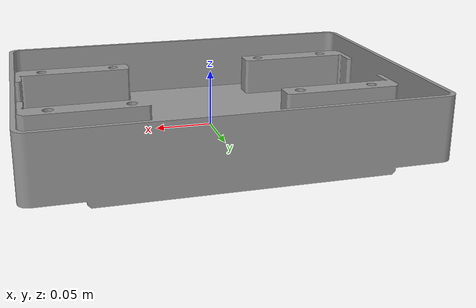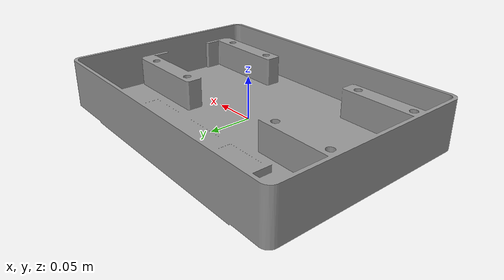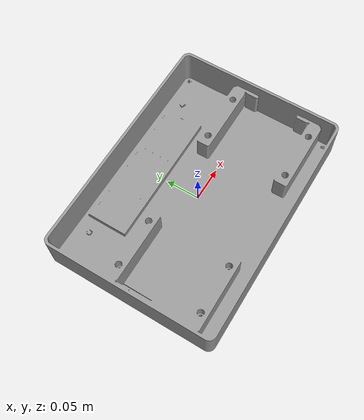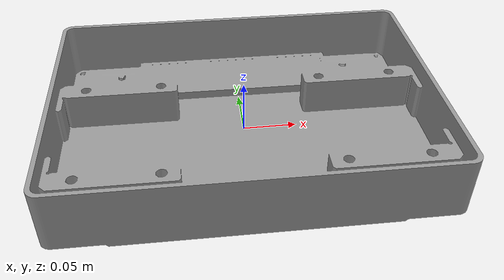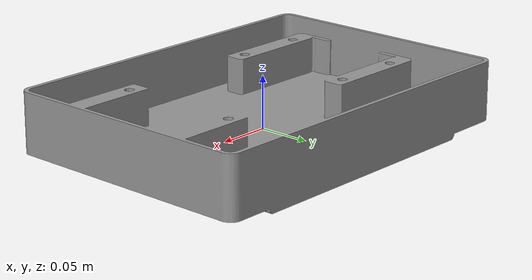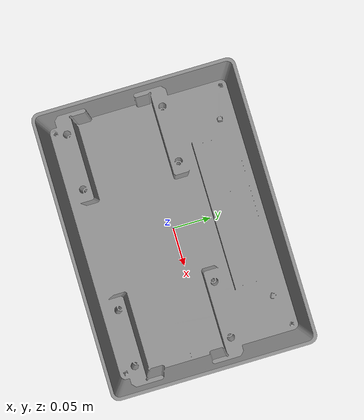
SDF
<?xml version="1.0" ?>
<sdf version="1.6">
  <model name="mobile_tray_h4">
    <link name="link">
      <gravity>false</gravity>
      <visual name="visual">
        <geometry>
          <mesh>
            <uri>file:///root/workcell_ws_classic/src/descriptions/ur_description/meshes/feeder/heater/trays/Mobile_Tray_H4.STL</uri>
            <scale>1 1 1</scale>
          </mesh>
        </geometry>
        <material>
          <!-- Medium grey color -->
          <ambient>0.5 0.5 0.5 1</ambient>
          <diffuse>0.6 0.6 0.6 1</diffuse>
          <specular>0.7 0.7 0.7 1</specular>
          <emissive>0 0 0 1</emissive>
        </material>
      </visual>

        <inertial>
          <mass>1.0</mass>
          <inertia>
            <ixx>0.0066667</ixx>
            <ixy>0</ixy>
            <ixz>0</ixz>
            <iyy>0.0066667</iyy>
            <iyz>0</iyz>
            <izz>0.0066667</izz>
          </inertia>
        </inertial>
    </link>
  </model>
</sdf>
